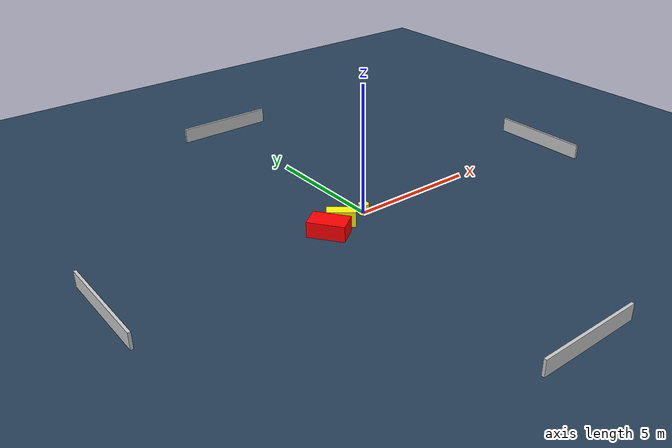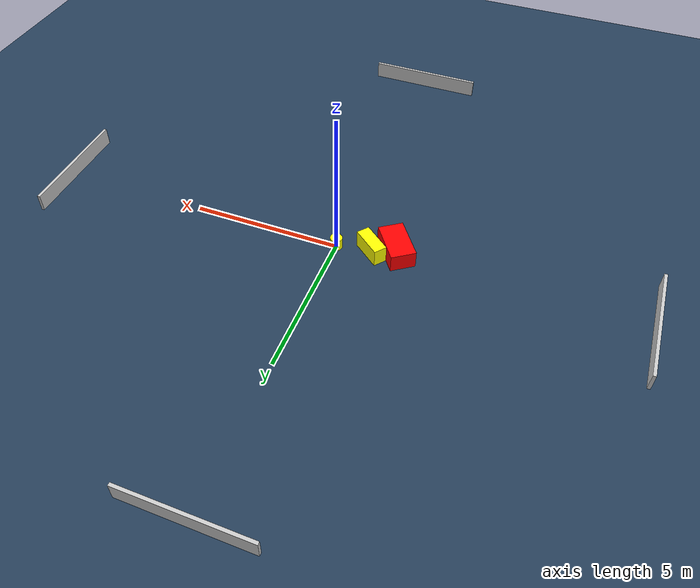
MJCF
<?xml version="1.0" ?>
<mujoco model="generated_environment">
  <option timestep="0.01" integrator="RK4" cone="elliptic"/>
  <default>
    <geom density="1"/>
  </default>
  <asset>
    <texture builtin="gradient" height="3072" name="skybox" rgb1="0.3 0.5 0.7" rgb2="0 0 0" type="skybox" width="512"/>
    <texture builtin="checker" height="300" name="groundplane" rgb1="0.2 0.3 0.4" rgb2="0.1 0.2 0.3" type="2d" width="300"/>
    <material name="groundplane" reflectance="0.2" texrepeat="5 5" texture="groundplane"/>
  </asset>
  <worldbody>
    <light dir="0 0 -1" directional="true" pos="0 0 1.5"/>
    <geom condim="3" friction="0.5 0.005 0.001" material="groundplane" name="floor" pos="0 0 0" size="0 0 0.05" type="plane"/>
    <body name="walls">
      <geom name="wall_1" condim="4" pos="-10.0 0.0 0.3" rgba="0.800000011920929 0.800000011920929 0.800000011920929 1.0" size="0.05 2.0 0.3" type="box"/>
      <geom name="wall_2" condim="4" pos="10.0 0.0 0.3" rgba="0.800000011920929 0.800000011920929 0.800000011920929 1.0" size="0.05 2.0 0.3" type="box"/>
      <geom name="wall_3" condim="4" pos="0.0 -10.0 0.3" rgba="0.800000011920929 0.800000011920929 0.800000011920929 1.0" size="2.0 0.05 0.3" type="box"/>
      <geom name="wall_4" condim="4" pos="0.0 10.0 0.3" rgba="0.800000011920929 0.800000011920929 0.800000011920929 1.0" size="2.0 0.05 0.3" type="box"/>
    </body>
    <body name="robot">
      <joint name="joint_x" type="slide" pos="0 0 0" axis="1 0 0"/>
      <joint name="joint_y" type="slide" pos="0 0 0" axis="0 1 0"/>
      <geom name="robot" type="cylinder" pos="0.0 0.0 0.2" size="0.2 0.2 0.0" mass="5.0" friction="1.0 0.005 0.0001" condim="4" rgba="1.0 1.0 0.0 1.0"/>
    </body>
    <body name="obstacle_1_movable">
      <geom name="obstacle_1_movable" condim="4" pos="-1.151121733843377 -0.13689221023404216 0.3" euler="0 0 231.3710105484458" friction="0.0 0.005 0.001" rgba="1.0 1.0 0.0 1.0" size="0.21975863859658937 0.5316518986129434 0.3" type="box" mass="0.1"/>
      <joint type="free"/>
    </body>
    <body name="obstacle_2_static">
      <geom name="obstacle_2_static" condim="4" pos="-1.9074847646436166 -0.4152089122993285 0.3" euler="0 0 125.5512836347162" friction="0.0 0.005 0.001" rgba="1.0 0.0 0.0 1.0" size="0.7055162576747955 0.4174588074597085 0.3" type="box"/>
    </body>
  </worldbody>
  <actuator>
    <motor name="actuator_x" joint="joint_x" gear="1" ctrlrange="-1 1"/>
    <motor name="actuator_y" joint="joint_y" gear="1" ctrlrange="-1 1"/>
  </actuator>
</mujoco>
